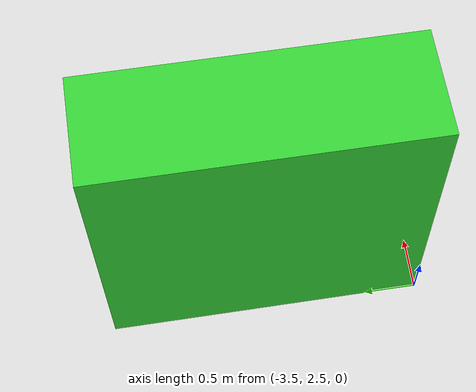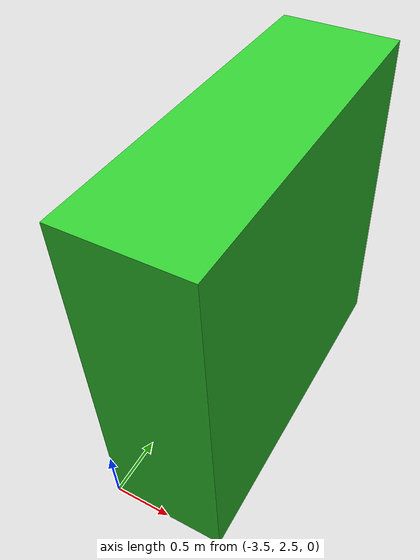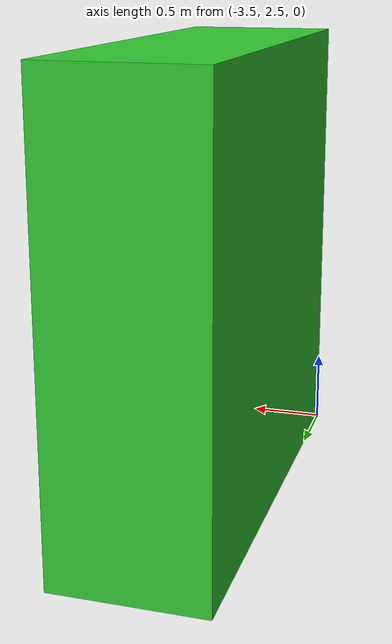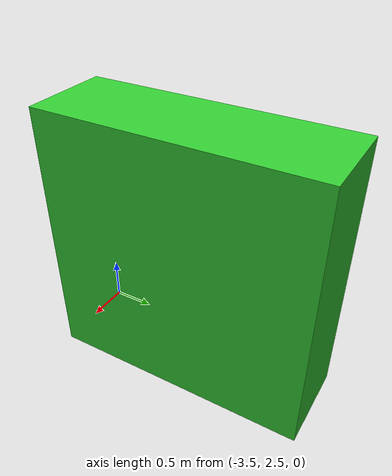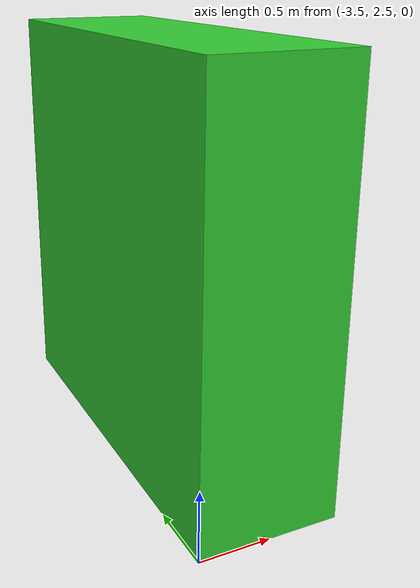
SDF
<?xml version="1.0"?>
<sdf version="1.7">
  <model name="box_2">
    <pose>-3 4 1.5 0 0 0</pose>
    <link name="link">
      <collision name="collision">
        <geometry>
          <box>
            <size>1 3 3</size>
          </box>
        </geometry>
      </collision>
      <visual name="visual">
        <geometry>
          <box>
            <size>1 3 3</size>
          </box>
        </geometry>
        <material>
          <ambient>0.2 0.8 0.2 1</ambient>
          <diffuse>0.2 0.8 0.2 1</diffuse>
        </material>
      </visual>
    </link>
  </model>
</sdf>
